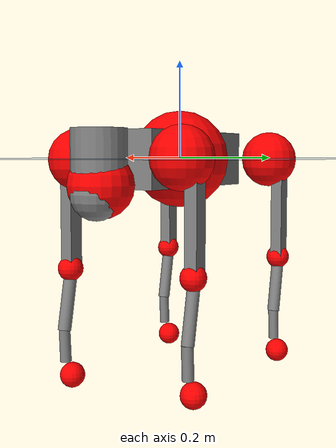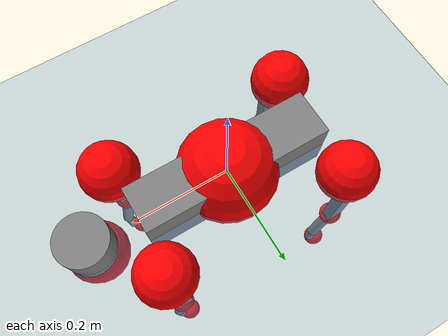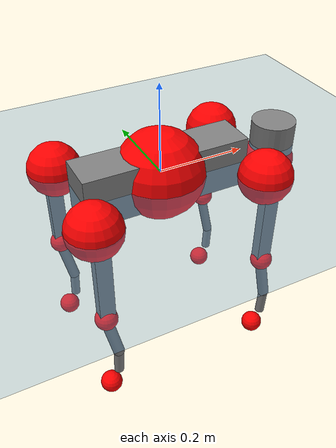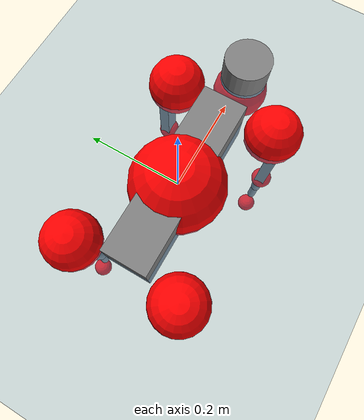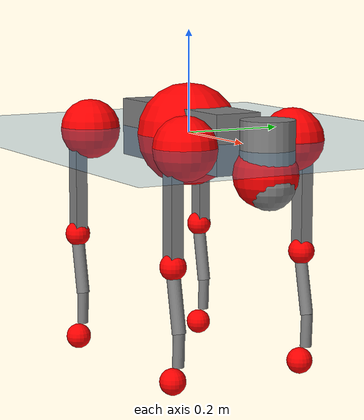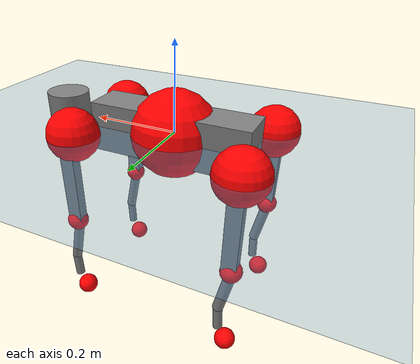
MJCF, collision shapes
<mujoco model="go2">
  <compiler angle="radian" assetdir="assets" balanceinertia="true" inertiafromgeom="false"/>

  <option timestep="0.005" density="1.2" viscosity="2e-05"/>

  <size nkey="1"/>

  <visual>
    <quality shadowsize="8192"/>
    <map shadowclip="0.5"/>
  </visual>

  <default>
    <default class="/">
      <geom contype="0" conaffinity="0" group="1" solref="-1000 -80"/>
      <site size="0.01 0.005 0.005" group="5"/>
      <general forcelimited="true" biastype="affine" gainprm="20" biasprm="0 -20 -0.5"/>
      <default class="go2">
        <joint armature="0.01" damping="0.01" frictionloss="0.2"/>
        <geom condim="1" margin="0.001"/>
        <default class="visual">
          <geom type="mesh" group="2"/>
        </default>
        <default class="collision">
          <geom group="3"/>
          <default class="foot">
            <geom size="0.022 0 0" condim="6" priority="1" friction="0.8 0.02 0.01" solimp="0.015 1 0.022"/>
          </default>
        </default>
        <default class="reward_collision_sphere">
          <geom group="5" rgba="1 0 0 1"/>
        </default>
      </default>
    </default>
  </default>

  <asset>
    <texture type="skybox" colorspace="auto" name="//unnamed_texture_0" builtin="gradient" rgb1="0.95 0.95 0.95" rgb2="0.95 0.95 0.95" width="100" height="600"/>
    <texture type="2d" colorspace="auto" name="texplane" builtin="checker" rgb1="0.345 0.575 0.748" rgb2="0.345 0.575 0.748" markrgb="1 1 1" width="512" height="512"/>
    <material name="MatPlane" class="/" texture="texplane" texuniform="true" texrepeat="2 2" specular="0.9"/>
    <material name="metal" class="/" rgba="0.9 0.95 0.95 1"/>
    <material name="black" class="/" rgba="0 0 0 1"/>
    <material name="white" class="/"/>
    <material name="gray" class="/" rgba="0.671705 0.692426 0.77427 1"/>
    <mesh name="base_0" class="/" file="base_0.obj"/>
    <mesh name="base_1" class="/" file="base_1.obj"/>
    <mesh name="base_2" class="/" file="base_2.obj"/>
    <mesh name="base_3" class="/" file="base_3.obj"/>
    <mesh name="base_4" class="/" file="base_4.obj"/>
    <mesh name="hip_0" class="/" file="hip_0.obj"/>
    <mesh name="hip_1" class="/" file="hip_1.obj"/>
    <mesh name="thigh_0" class="/" file="thigh_0.obj"/>
    <mesh name="thigh_1" class="/" file="thigh_1.obj"/>
    <mesh name="thigh_mirror_0" class="/" file="thigh_mirror_0.obj"/>
    <mesh name="thigh_mirror_1" class="/" file="thigh_mirror_1.obj"/>
    <mesh name="calf_0" class="/" file="calf_0.obj"/>
    <mesh name="calf_1" class="/" file="calf_1.obj"/>
    <mesh name="calf_mirror_0" class="/" file="calf_mirror_0.obj"/>
    <mesh name="calf_mirror_1" class="/" file="calf_mirror_1.obj"/>
    <mesh name="foot" class="/" file="foot.obj"/>
  </asset>

  <worldbody>
    <geom name="floor" class="/" size="100 100 0.125" type="plane" group="0" material="MatPlane"/>
    <light name="toplight_shadow" class="/" pos="0 0 5" dir="0.0990148 0.0990148 -0.990148" type="directional" ambient="0.04 0.04 0.04" diffuse="0.55 0.55 0.55" specular="0.12 0.12 0.12"/>
    <light name="toplight_fill" class="/" pos="0 0 5" dir="0.0990148 0.0990148 -0.990148" type="directional" castshadow="false" ambient="0.04 0.04 0.04" diffuse="0.3 0.3 0.3" specular="0.08 0.08 0.08"/>
    <body name="trunk" childclass="go2" pos="-0.000994143 -0.00017156 -0.00276592" quat="1 -0.00020015 -0.000327427 -0.000169603">
      <inertial pos="0.0186445 -0.00210828 -0.00308005" quat="-0.00385121 0.708427 0.00302174 0.705767" mass="7.08464" diaginertia="0.119116 0.0934296 0.0267051"/>
      <joint name="//unnamed_joint_0" type="free" armature="0" damping="0" frictionloss="0"/>
      <geom name="//unnamed_geom_1" class="visual" material="black" mesh="base_0"/>
      <geom name="//unnamed_geom_2" class="visual" material="black" mesh="base_1"/>
      <geom name="//unnamed_geom_3" class="visual" material="black" mesh="base_2"/>
      <geom name="//unnamed_geom_4" class="visual" material="white" mesh="base_3"/>
      <geom name="//unnamed_geom_5" class="visual" material="gray" mesh="base_4"/>
      <geom name="trunk_1" class="collision" size="0.188469 0.0468418 0.0571119" type="box"/>
      <geom name="trunk_2" class="collision" size="0.0500982 0.0450883" pos="0.287879 0 0.0101013" type="cylinder"/>
      <geom name="trunk_3" class="collision" size="0.0470923" pos="0.29596 0 -0.0606076"/>
      <geom name="//unnamed_geom_9" class="reward_collision_sphere" size="0.100196"/>
      <geom name="//unnamed_geom_10" class="reward_collision_sphere" size="0.0601178" pos="0.282829 0 -0.0454557"/>
      <site name="imu" pos="-0.029731 0.00273628 0.052472" size="0.0100196"/>
      <camera name="track" pos="0 -1.97132 0" quat="0.707107 0.707107 0 0" mode="trackcom"/>
      <camera name="ego_camera" pos="0.315152 0 0.0454557" quat="-0.5 -0.5 0.5 0.5"/>
      <body name="FL_hip" pos="0.194338 0.0450082 0.00346707" quat="0.999999 -0.000944689 0.000561454 0.000579095">
        <inertial pos="-0.00364141 -0.000237514 0.000936685" quat="0.501732 0.500105 0.51148 0.486362" mass="0.674301" diaginertia="0.000921496 0.000559289 0.000520295"/>
        <joint name="FL_hip_joint" pos="0 0 0" axis="0.999939 -0.00715529 -0.00840709" range="-1.02643 1.10597" armature="0.0106878" damping="0.0129638" frictionloss="0.200769"/>
        <geom name="//unnamed_geom_11" class="visual" material="metal" mesh="hip_0"/>
        <geom name="//unnamed_geom_12" class="visual" material="gray" mesh="hip_1"/>
        <geom name="//unnamed_geom_13" class="collision" size="0.0460903 0.0200393" pos="0 0.0788528 0" quat="0.707107 0.707107 0 0" type="cylinder"/>
        <geom name="//unnamed_geom_14" class="reward_collision_sphere" size="0.0601178" pos="0 0.0689962 0"/>
        <body name="FL_thigh" pos="-0.00181071 0.094361 0.00129485" quat="1 8.63741e-07 8.93972e-05 -0.000104767">
          <inertial pos="-0.00155111 -0.022203 -0.0312485" quat="0.831318 0.0795364 -0.0200427 0.549711" mass="1.18444" diaginertia="0.00604659 0.00535728 0.000913173"/>
          <joint name="FL_thigh_joint" pos="0 0 0" axis="-0.000465852 0.999993 0.00377555" stiffness="0.00344862" range="-1.58682 3.50701" armature="0.00993107" damping="0.00146756" frictionloss="0.181012"/>
          <geom name="//unnamed_geom_15" class="visual" material="metal" mesh="thigh_0"/>
          <geom name="//unnamed_geom_16" class="visual" material="gray" mesh="thigh_1"/>
          <geom name="//unnamed_geom_17" class="collision" size="0.106709 0.012274 0.0170334" pos="0 0 -0.107578" quat="0.707107 0 0.707107 0" type="box"/>
          <body name="FL_calf" pos="0.0023383 -0.00168812 -0.216229" quat="0.999999 0.000703136 -0.000952822 0.000566038">
            <inertial pos="0.00558199 -0.000790858 -0.143474" quat="0.713736 -0.000125866 -0.00354809 0.700406" mass="0.236814" diaginertia="0.00151639 0.00135725 5.36398e-05"/>
            <joint name="FL_calf_joint" pos="0 0 0" axis="0.0140591 0.999562 0.0260388" range="-2.78074 -0.793907" armature="0.0113573" damping="0.000745815" frictionloss="0.228919"/>
            <geom name="//unnamed_geom_18" class="visual" material="gray" mesh="calf_0"/>
            <geom name="//unnamed_geom_19" class="visual" material="black" mesh="calf_1"/>
            <geom name="FL_calf0" class="collision" size="0.0120236 0.0601178" pos="0.00808082 0 -0.0606076" quat="0.994493 0 -0.104807 0" type="cylinder"/>
            <geom name="//unnamed_geom_21" class="collision" size="0.0110216 0.0325638" pos="0.0202021 0 -0.149499" quat="0.999688 0 0.0249974 0" type="cylinder"/>
            <geom name="//unnamed_geom_22" class="visual" pos="0 0 -0.215157" quat="1 0 0 0" material="black" mesh="foot"/>
            <geom name="FL_foot" class="foot" size="0.0155098" pos="-0.00202021 0 -0.215157"/>
            <geom name="//unnamed_geom_24" class="reward_collision_sphere" size="0.0250491"/>
            <geom name="//unnamed_geom_25" class="reward_collision_sphere" size="0.0250491" pos="-0.00202021 0 -0.215157"/>
            <site name="FL_foot" class="foot" pos="-0.00202021 0 -0.215157" size="0.0100196"/>
          </body>
        </body>
      </body>
      <body name="FR_hip" pos="0.193047 -0.0460371 -0.000701434" quat="1 -5.91336e-05 8.92619e-06 8.08722e-05">
        <inertial pos="-0.00335444 -0.000927412 -0.00141585" quat="0.498237 0.505462 0.499245 0.497013" mass="0.698639" diaginertia="0.000933207 0.000594293 0.000520863"/>
        <joint name="FR_hip_joint" pos="0 0 0" axis="0.999943 0.000989478 -0.0106543" range="-1.08505 1.04034" armature="0.00906991" damping="0.000896973" frictionloss="0.18153"/>
        <geom name="//unnamed_geom_26" class="visual" pos="0 -2.1314e-10 -9.14199e-09" quat="4.63268e-05 1 0 0" material="metal" mesh="hip_0"/>
        <geom name="//unnamed_geom_27" class="visual" pos="0 -3.45525e-10 2.26116e-08" quat="4.63268e-05 1 0 0" material="gray" mesh="hip_1"/>
        <geom name="//unnamed_geom_28" class="collision" size="0.0460903 0.0200393" pos="0 -0.0788528 0" quat="0.707107 0.707107 0 0" type="cylinder"/>
        <geom name="//unnamed_geom_29" class="reward_collision_sphere" size="0.0601178" pos="0 -0.0689962 0"/>
        <body name="FR_thigh" pos="-0.0022018 -0.0924576 -0.00203725" quat="1 3.75649e-05 9.22398e-06 7.39721e-05">
          <inertial pos="-0.00345258 0.0216149 -0.0319375" quat="0.549457 -0.0299236 0.0824924 0.830901" mass="1.10181" diaginertia="0.00598137 0.00544594 0.000922988"/>
          <joint name="FR_thigh_joint" pos="0 0 0" axis="0.0028831 -0.999963 -0.00812626" range="-3.4733 1.62497" armature="0.0102663" damping="0" frictionloss="0.201732"/>
          <geom name="//unnamed_geom_30" class="visual" material="metal" mesh="thigh_mirror_0"/>
          <geom name="//unnamed_geom_31" class="visual" material="gray" mesh="thigh_mirror_1"/>
          <geom name="//unnamed_geom_32" class="collision" size="0.106709 0.012274 0.0170334" pos="0 0 -0.107578" quat="0.707107 0 0.707107 0" type="box"/>
          <body name="FR_calf" pos="0.00168476 -0.00126758 -0.212627" quat="1 0.000373321 4.2852e-05 -0.000200827">
            <inertial pos="0.00581218 0.00171427 -0.141334" quat="0.696301 -0.0144069 0.00229705 0.717601" mass="0.244387" diaginertia="0.0015509 0.00132268 5.52981e-05"/>
            <joint name="FR_calf_joint" pos="0 0 0" axis="0.00791596 -0.999958 -0.00455519" range="0.780406 2.77828" armature="0.00923718" damping="0.00719308" frictionloss="0.189"/>
            <geom name="//unnamed_geom_33" class="visual" material="gray" mesh="calf_mirror_0"/>
            <geom name="//unnamed_geom_34" class="visual" material="black" mesh="calf_mirror_1"/>
            <geom name="FR_calf0" class="collision" size="0.0130255 0.0601178" pos="0.010101 0 -0.0606076" quat="0.995004 0 -0.0998334 0" type="cylinder"/>
            <geom name="//unnamed_geom_36" class="collision" size="0.0110216 0.0325638" pos="0.0202021 0 -0.149499" quat="0.999688 0 0.0249974 0" type="cylinder"/>
            <geom name="//unnamed_geom_37" class="visual" pos="0 0 -0.215157" quat="1 0 0 0" material="black" mesh="foot"/>
            <geom name="FR_foot" class="foot" size="0.0224027" pos="-0.00202021 0 -0.215157"/>
            <geom name="//unnamed_geom_39" class="reward_collision_sphere" size="0.0250491"/>
            <geom name="//unnamed_geom_40" class="reward_collision_sphere" size="0.0250491" pos="-0.00202021 0 -0.215157"/>
            <site name="FR_foot" class="foot" pos="-0.00202021 0 -0.215157" size="0.0100196"/>
          </body>
        </body>
      </body>
      <body name="RL_hip" pos="-0.196228 0.0483924 -0.000814162" quat="1 -0.000130892 0.000109754 -0.000827726">
        <inertial pos="0.00784014 0.00377908 -0.00131624" quat="0.511754 0.501117 0.499669 0.487155" mass="0.685302" diaginertia="0.000883752 0.00054664 0.000479117"/>
        <joint name="RL_hip_joint" pos="0 0 0" axis="-0.999998 0.00143892 0.00128422" range="-1.00735 1.0434" armature="0.00901712" damping="0" frictionloss="0.208526"/>
        <geom name="//unnamed_geom_41" class="visual" pos="0 0 3.99736e-11" quat="4.63268e-05 0 1 0" material="metal" mesh="hip_0"/>
        <geom name="//unnamed_geom_42" class="visual" pos="0 0 3.54509e-11" quat="4.63268e-05 0 1 0" material="gray" mesh="hip_1"/>
        <geom name="//unnamed_geom_43" class="collision" size="0.0460903 0.0200393" pos="0 0.0788528 0" quat="0.707107 0.707107 0 0" type="cylinder"/>
        <geom name="//unnamed_geom_44" class="reward_collision_sphere" size="0.0601178" pos="0 0.0689962 0"/>
        <body name="RL_thigh" pos="-0.00282394 0.0932585 -0.00161102" quat="1 1.87318e-05 7.86463e-06 1.68701e-06">
          <inertial pos="-0.0037659 -0.0193806 -0.0326137" quat="0.831101 0.0818307 -0.0165699 0.549818" mass="1.16094" diaginertia="0.00629798 0.00525606 0.000943207"/>
          <joint name="RL_thigh_joint" pos="0 0 0" axis="0.00275466 0.999991 -0.00315381" stiffness="0.0134799" range="-0.525385 4.55573" armature="0.00866244" damping="0" frictionloss="0.219594"/>
          <geom name="//unnamed_geom_45" class="visual" material="metal" mesh="thigh_0"/>
          <geom name="//unnamed_geom_46" class="visual" material="gray" mesh="thigh_1"/>
          <geom name="//unnamed_geom_47" class="collision" size="0.106709 0.012274 0.0170334" pos="0 0 -0.107578" quat="0.707107 0 0.707107 0" type="box"/>
          <body name="RL_calf" pos="-0.00270876 -0.0026545 -0.217581" quat="1 -0.00076376 -0.000413286 -0.000365913">
            <inertial pos="0.00608238 -0.000861488 -0.141754" quat="0.710183 0.00188867 -0.00537278 0.703994" mass="0.243713" diaginertia="0.00155602 0.00135719 5.57142e-05"/>
            <joint name="RL_calf_joint" pos="0 0 0" axis="-0.000546502 0.999975 0.00709817" range="-2.73106 -0.840484" armature="0.00884296" damping="0.00483759" frictionloss="0.22883"/>
            <geom name="//unnamed_geom_48" class="visual" material="gray" mesh="calf_0"/>
            <geom name="//unnamed_geom_49" class="visual" material="black" mesh="calf_1"/>
            <geom name="RL_calf0" class="collision" size="0.0130255 0.0601178" pos="0.010101 0 -0.0606076" quat="0.995004 0 -0.0998334 0" type="cylinder"/>
            <geom name="//unnamed_geom_51" class="collision" size="0.0110216 0.0325638" pos="0.0202021 0 -0.149499" quat="0.999688 0 0.0249974 0" type="cylinder"/>
            <geom name="//unnamed_geom_52" class="visual" pos="0 0 -0.215157" quat="1 0 0 0" material="black" mesh="foot"/>
            <geom name="RL_foot" class="foot" size="0.0181383" pos="-0.00202021 0 -0.215157"/>
            <geom name="//unnamed_geom_54" class="reward_collision_sphere" size="0.0250491"/>
            <geom name="//unnamed_geom_55" class="reward_collision_sphere" size="0.0250491" pos="-0.00202021 0 -0.215157"/>
            <site name="RL_foot" class="foot" pos="-0.00202021 0 -0.215157" size="0.0100196"/>
          </body>
        </body>
      </body>
      <body name="RR_hip" pos="-0.19667 -0.0479959 -0.00272637" quat="0.999999 -0.000382112 0.00108953 0.000529897">
        <inertial pos="0.00388436 -0.00177211 0.00198403" quat="0.495492 0.499096 0.496564 0.508739" mass="0.658921" diaginertia="0.000903751 0.000536182 0.000481135"/>
        <joint name="RR_hip_joint" pos="0 0 0" axis="-0.999997 0.000710408 0.0024917" range="-1.09021 1.06358" armature="0.00975535" damping="0.00183567" frictionloss="0.205575"/>
        <geom name="//unnamed_geom_56" class="visual" pos="-1.05025e-12 -2.1314e-10 9.18197e-09" quat="2.14617e-09 4.63268e-05 4.63268e-05 -1" material="metal" mesh="hip_0"/>
        <geom name="//unnamed_geom_57" class="visual" pos="1.76237e-12 -3.45525e-10 -2.25762e-08" quat="2.14617e-09 4.63268e-05 4.63268e-05 -1" material="gray" mesh="hip_1"/>
        <geom name="//unnamed_geom_58" class="collision" size="0.0460903 0.0200393" pos="0 -0.0788528 0" quat="0.707107 0.707107 0 0" type="cylinder"/>
        <geom name="//unnamed_geom_59" class="reward_collision_sphere" size="0.0601178" pos="0 -0.0689962 0"/>
        <body name="RR_thigh" pos="-0.00121787 -0.0971162 0.000807015" quat="1 0.000292113 0.000176678 -0.000504157">
          <inertial pos="-0.000952006 0.021676 -0.0330708" quat="0.551552 -0.0200384 0.0844402 0.829614" mass="1.13736" diaginertia="0.00605534 0.00535557 0.00092453"/>
          <joint name="RR_thigh_joint" pos="0 0 0" axis="0.000879732 -0.999885 0.0151491" stiffness="0.00227927" range="-4.55412 0.53356" armature="0.00889427" damping="0.00192779" frictionloss="0.205358"/>
          <geom name="//unnamed_geom_60" class="visual" material="metal" mesh="thigh_mirror_0"/>
          <geom name="//unnamed_geom_61" class="visual" material="gray" mesh="thigh_mirror_1"/>
          <geom name="//unnamed_geom_62" class="collision" size="0.106709 0.012274 0.0170334" pos="0 0 -0.107578" quat="0.707107 0 0.707107 0" type="box"/>
          <body name="RR_calf" pos="-0.00134713 -0.0015524 -0.21429" quat="0.999999 0.00097434 -0.000756246 0.000207909">
            <inertial pos="0.00394721 0.00078488 -0.143916" quat="0.69742 -0.00875219 0.00736543 0.716571" mass="0.237312" diaginertia="0.00149257 0.00138287 5.46069e-05"/>
            <joint name="RR_calf_joint" pos="0 0 0" axis="-0.00479532 -0.999988 0.00127031" stiffness="0.00978938" range="0.836708 2.69784" armature="0.0094893" damping="0.0235216" frictionloss="0.201236"/>
            <geom name="//unnamed_geom_63" class="visual" material="gray" mesh="calf_mirror_0"/>
            <geom name="//unnamed_geom_64" class="visual" material="black" mesh="calf_mirror_1"/>
            <geom name="RR_calf0" class="collision" size="0.0130255 0.0601178" pos="0.010101 0 -0.0606076" quat="0.995004 0 -0.0998334 0" type="cylinder"/>
            <geom name="//unnamed_geom_66" class="collision" size="0.0110216 0.0325638" pos="0.0202021 0 -0.149499" quat="0.999688 0 0.0249974 0" type="cylinder"/>
            <geom name="//unnamed_geom_67" class="visual" pos="0 0 -0.215157" quat="1 0 0 0" material="black" mesh="foot"/>
            <geom name="RR_foot" class="foot" size="0.0197526" pos="-0.00202021 0 -0.215157"/>
            <geom name="//unnamed_geom_69" class="reward_collision_sphere" size="0.0250491"/>
            <geom name="//unnamed_geom_70" class="reward_collision_sphere" size="0.0250491" pos="-0.00202021 0 -0.215157"/>
            <site name="RR_foot" class="foot" pos="-0.00202021 0 -0.215157" size="0.0100196"/>
          </body>
        </body>
      </body>
    </body>
  </worldbody>

  <contact>
    <pair class="/" geom1="floor" geom2="FL_foot" name="//unnamed_contact_0"/>
    <pair class="/" geom1="floor" geom2="FR_foot" name="//unnamed_contact_1"/>
    <pair class="/" geom1="floor" geom2="RL_foot" name="//unnamed_contact_2"/>
    <pair class="/" geom1="floor" geom2="RR_foot" name="//unnamed_contact_3"/>
  </contact>

  <actuator>
    <general name="FL_hip" class="/" joint="FL_hip_joint" forcerange="-23.9322 23.9322" gainprm="20.4128" biasprm="0 -20.4128 -0.485916"/>
    <general name="FL_thigh" class="/" joint="FL_thigh_joint" forcerange="-21.2157 21.2157" gainprm="20.4128" biasprm="0 -20.4128 -0.485916"/>
    <general name="FL_calf" class="/" joint="FL_calf_joint" forcerange="-43.8637 43.8637" gainprm="20.4128" biasprm="0 -20.4128 -0.485916"/>
    <general name="FR_hip" class="/" joint="FR_hip_joint" forcerange="-21.1684 21.1684" gainprm="20.4128" biasprm="0 -20.4128 -0.485916"/>
    <general name="FR_thigh" class="/" joint="FR_thigh_joint" forcerange="-25.961 25.961" gainprm="20.4128" biasprm="0 -20.4128 -0.485916"/>
    <general name="FR_calf" class="/" joint="FR_calf_joint" forcerange="-41.8072 41.8072" gainprm="20.4128" biasprm="0 -20.4128 -0.485916"/>
    <general name="RL_hip" class="/" joint="RL_hip_joint" forcerange="-23.7351 23.7351" gainprm="20.4128" biasprm="0 -20.4128 -0.485916"/>
    <general name="RL_thigh" class="/" joint="RL_thigh_joint" forcerange="-22.1037 22.1037" gainprm="20.4128" biasprm="0 -20.4128 -0.485916"/>
    <general name="RL_calf" class="/" joint="RL_calf_joint" forcerange="-44.3211 44.3211" gainprm="20.4128" biasprm="0 -20.4128 -0.485916"/>
    <general name="RR_hip" class="/" joint="RR_hip_joint" forcerange="-22.1474 22.1474" gainprm="20.4128" biasprm="0 -20.4128 -0.485916"/>
    <general name="RR_thigh" class="/" joint="RR_thigh_joint" forcerange="-22.6622 22.6622" gainprm="20.4128" biasprm="0 -20.4128 -0.485916"/>
    <general name="RR_calf" class="/" joint="RR_calf_joint" forcerange="-49.2284 49.2284" gainprm="20.4128" biasprm="0 -20.4128 -0.485916"/>
  </actuator>

  <sensor>
    <gyro site="imu" name="imu_angular_velocity"/>
    <velocimeter site="imu" name="imu_linear_velocity"/>
    <framelinvel objtype="site" objname="FL_foot" name="FL_foot_global_linear_velocity"/>
    <framelinvel objtype="site" objname="FR_foot" name="FR_foot_global_linear_velocity"/>
    <framelinvel objtype="site" objname="RL_foot" name="RL_foot_global_linear_velocity"/>
    <framelinvel objtype="site" objname="RR_foot" name="RR_foot_global_linear_velocity"/>
  </sensor>

  <keyframe>
    <key name="home" qpos="0 0 0.325 1 0 0 0 0.1 0.8 -1.5 -0.1 -0.8 1.5 -0.1 0.8 -1.5 0.1 -0.8 1.5"/>
  </keyframe>
</mujoco>
